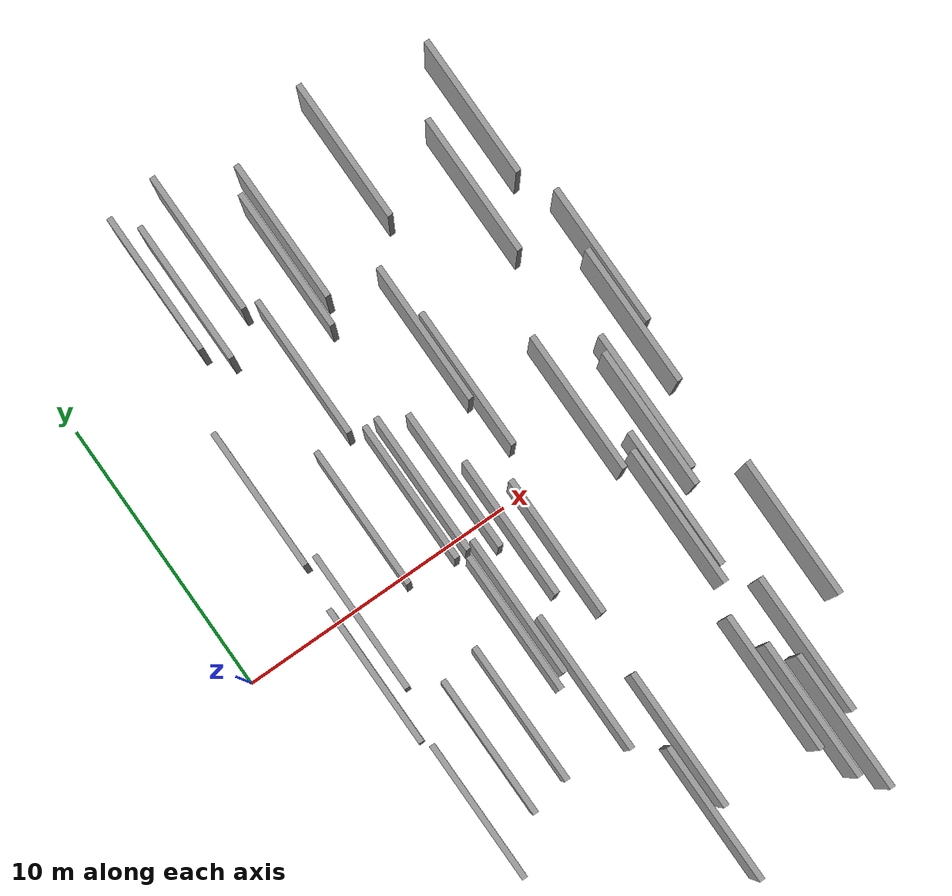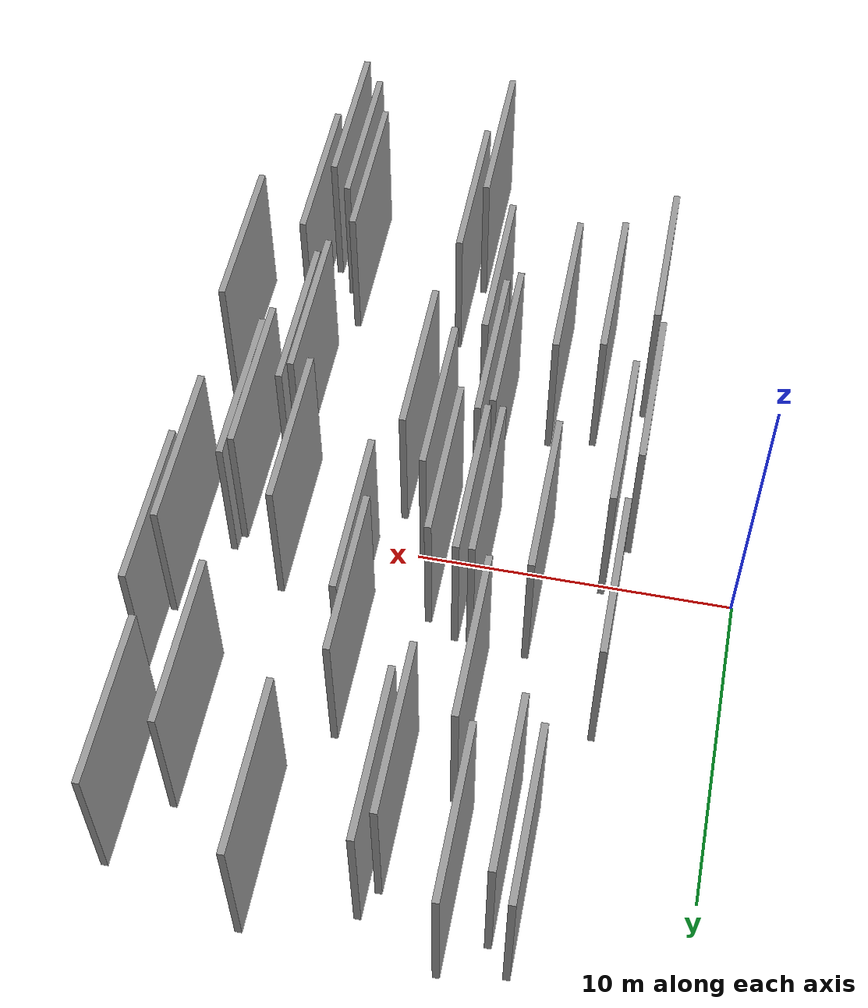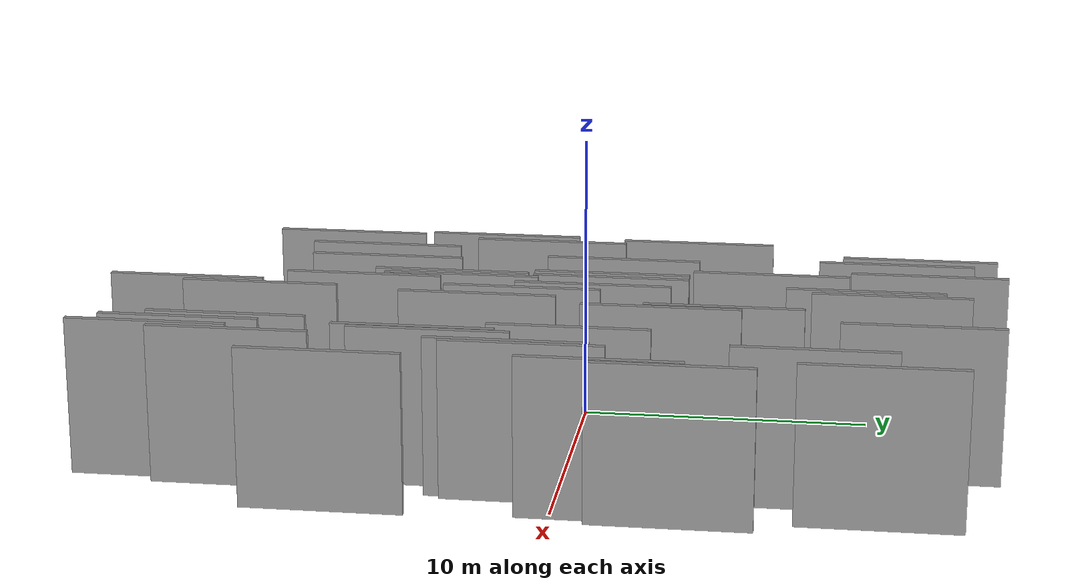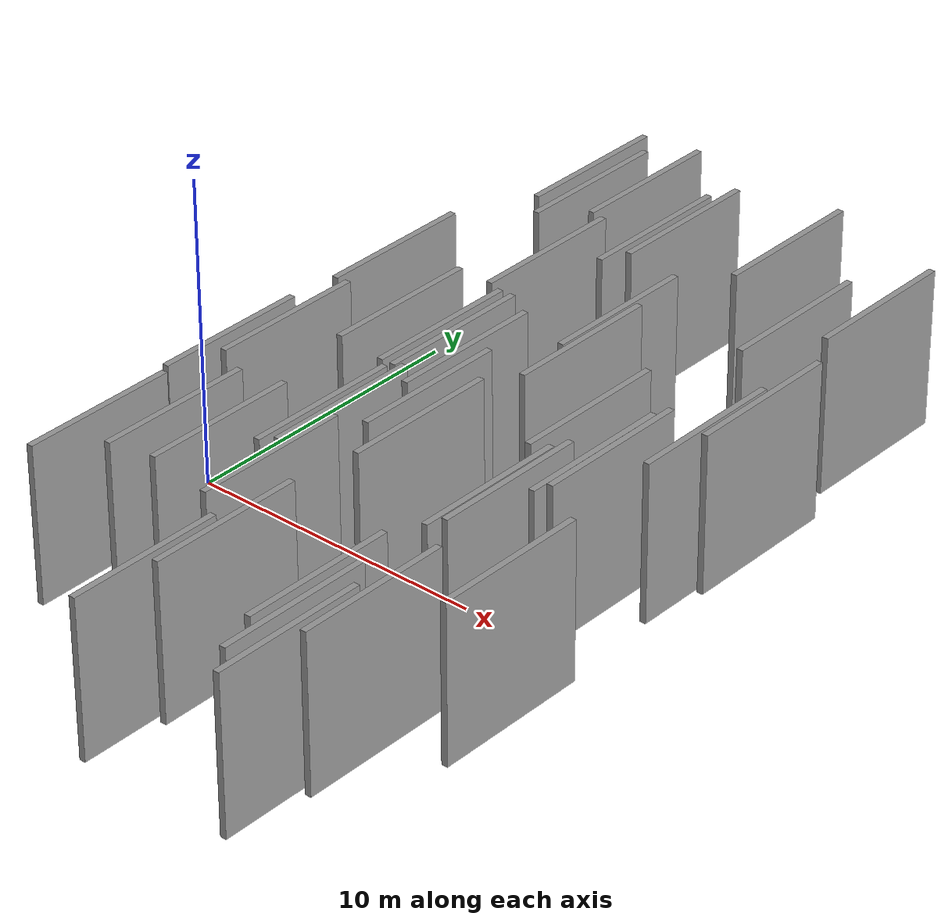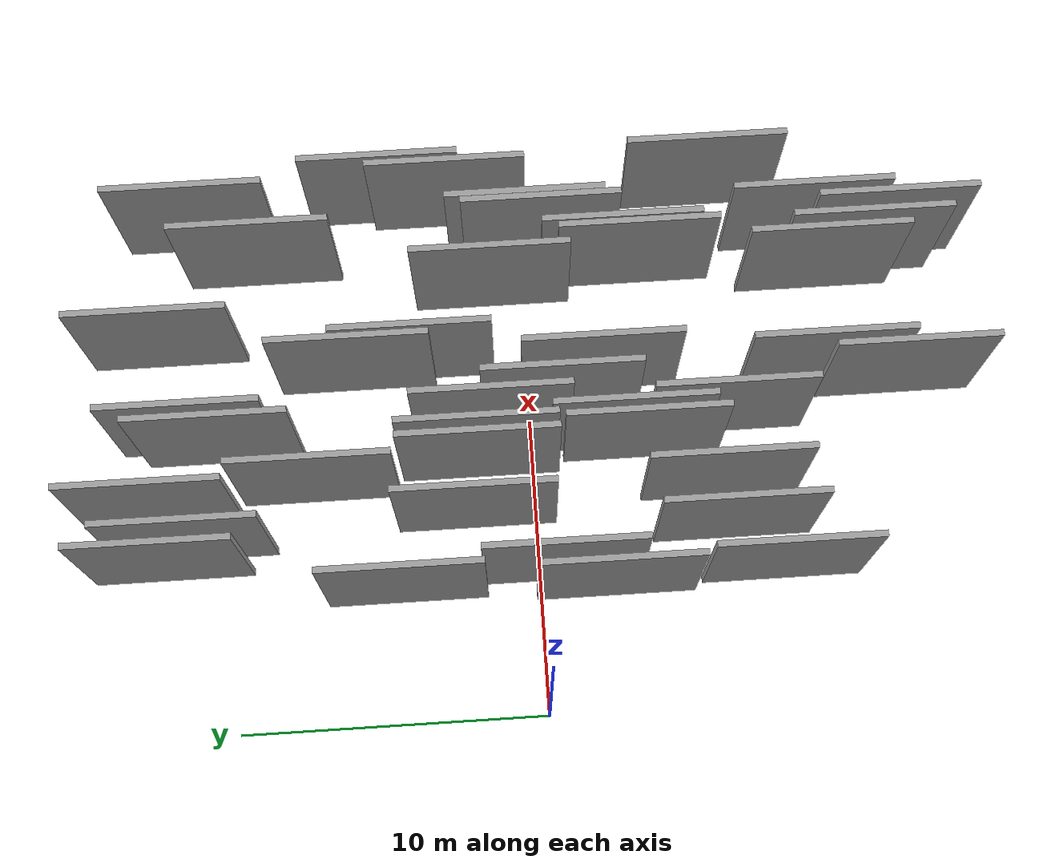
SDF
<sdf version="1.6">
 <world name="default">
  <scene>
   <sky><clouds><speed>12</speed></clouds></sky>
   <ambient>0.4 0.4 0.4 1</ambient>
   <background>0.7 0.7 0.7 1</background>
   <shadows>1</shadows>
  </scene>
  <gravity>0 0 -9.8066</gravity>
  <magnetic_field>6e-06 2.3e-05 -4.2e-05</magnetic_field>
  <physics default="0" name="default_physics" type="ode">
   <ode>
    <solver>
     <type>quick</type>
     <iters>10</iters>
     <sor>1.0</sor>
     <use_dynamic_moi_rescaling>0</use_dynamic_moi_rescaling>
    </solver>
    <constraints>
     <cfm>0</cfm>
     <erp>0.2</erp>
     <contact_max_correcting_vel>100</contact_max_correcting_vel>
     <contact_surface_layer>0.001</contact_surface_layer>
    </constraints>
   </ode>
   <max_step_size>0.004</max_step_size>
   <real_time_factor>1</real_time_factor>
   <real_time_update_rate>250</real_time_update_rate>
  </physics>
  <light name="sun" type="directional">
   <pose>0 0 10 0 0 0</pose>
   <diffuse>0.8 0.8 0.8 1</diffuse>
   <specular>0.2 0.2 0.2 1</specular>
   <attenuation>
    <range>1000</range>
    <constant>0.9</constant>
    <linear>0.01</linear>
    <quadratic>0.001</quadratic>
   </attenuation>
   <direction>-0.5 0.1 -0.9</direction>
  </light>
  <model name="grey_wall_1">
   <static>1</static>
   <pose>13.4638 1.0400 2.5 0.000000 0.000000 1.570796</pose>
   <link name="link">
    <pose>0 0 2.50 0 0 0</pose>
    <collision name="collision"><geometry><box><size>5.00 0.2 5.00</size></box></geometry></collision>
    <visual name="visual">
     <cast_shadows>0</cast_shadows>
     <geometry><box><size>5.00 0.2 5.00</size></box></geometry>
     <material>
      <script>
       <uri>model://grey_wall/materials/scripts</uri>
       <uri>model://grey_wall/materials/textures</uri>
       <name>vrc/grey_wall</name>
      </script>
     </material>
    </visual>
   </link>
  </model>
  <model name="grey_wall_2">
   <static>1</static>
   <pose>10.3620 -2.2389 2.5 0.000000 0.000000 1.570796</pose>
   <link name="link">
    <pose>0 0 2.50 0 0 0</pose>
    <collision name="collision"><geometry><box><size>5.00 0.2 5.00</size></box></geometry></collision>
    <visual name="visual">
     <cast_shadows>0</cast_shadows>
     <geometry><box><size>5.00 0.2 5.00</size></box></geometry>
     <material>
      <script>
       <uri>model://grey_wall/materials/scripts</uri>
       <uri>model://grey_wall/materials/textures</uri>
       <name>vrc/grey_wall</name>
      </script>
     </material>
    </visual>
   </link>
  </model>
  <model name="grey_wall_3">
   <static>1</static>
   <pose>10.7976 5.5351 2.5 0.000000 0.000000 1.570796</pose>
   <link name="link">
    <pose>0 0 2.50 0 0 0</pose>
    <collision name="collision"><geometry><box><size>5.00 0.2 5.00</size></box></geometry></collision>
    <visual name="visual">
     <cast_shadows>0</cast_shadows>
     <geometry><box><size>5.00 0.2 5.00</size></box></geometry>
     <material>
      <script>
       <uri>model://grey_wall/materials/scripts</uri>
       <uri>model://grey_wall/materials/textures</uri>
       <name>vrc/grey_wall</name>
      </script>
     </material>
    </visual>
   </link>
  </model>
  <model name="grey_wall_4">
   <static>1</static>
   <pose>7.1092 6.8293 2.5 0.000000 0.000000 1.570796</pose>
   <link name="link">
    <pose>0 0 2.50 0 0 0</pose>
    <collision name="collision"><geometry><box><size>5.00 0.2 5.00</size></box></geometry></collision>
    <visual name="visual">
     <cast_shadows>0</cast_shadows>
     <geometry><box><size>5.00 0.2 5.00</size></box></geometry>
     <material>
      <script>
       <uri>model://grey_wall/materials/scripts</uri>
       <uri>model://grey_wall/materials/textures</uri>
       <name>vrc/grey_wall</name>
      </script>
     </material>
    </visual>
   </link>
  </model>
  <model name="grey_wall_5">
   <static>1</static>
   <pose>4.0615 -0.6797 2.5 0.000000 0.000000 1.570796</pose>
   <link name="link">
    <pose>0 0 2.50 0 0 0</pose>
    <collision name="collision"><geometry><box><size>5.00 0.2 5.00</size></box></geometry></collision>
    <visual name="visual">
     <cast_shadows>0</cast_shadows>
     <geometry><box><size>5.00 0.2 5.00</size></box></geometry>
     <material>
      <script>
       <uri>model://grey_wall/materials/scripts</uri>
       <uri>model://grey_wall/materials/textures</uri>
       <name>vrc/grey_wall</name>
      </script>
     </material>
    </visual>
   </link>
  </model>
  <model name="grey_wall_6">
   <static>1</static>
   <pose>8.5882 9.8667 2.5 0.000000 0.000000 1.570796</pose>
   <link name="link">
    <pose>0 0 2.50 0 0 0</pose>
    <collision name="collision"><geometry><box><size>5.00 0.2 5.00</size></box></geometry></collision>
    <visual name="visual">
     <cast_shadows>0</cast_shadows>
     <geometry><box><size>5.00 0.2 5.00</size></box></geometry>
     <material>
      <script>
       <uri>model://grey_wall/materials/scripts</uri>
       <uri>model://grey_wall/materials/textures</uri>
       <name>vrc/grey_wall</name>
      </script>
     </material>
    </visual>
   </link>
  </model>
  <model name="grey_wall_7">
   <static>1</static>
   <pose>8.9923 10.6820 2.5 0.000000 0.000000 1.570796</pose>
   <link name="link">
    <pose>0 0 2.50 0 0 0</pose>
    <collision name="collision"><geometry><box><size>5.00 0.2 5.00</size></box></geometry></collision>
    <visual name="visual">
     <cast_shadows>0</cast_shadows>
     <geometry><box><size>5.00 0.2 5.00</size></box></geometry>
     <material>
      <script>
       <uri>model://grey_wall/materials/scripts</uri>
       <uri>model://grey_wall/materials/textures</uri>
       <name>vrc/grey_wall</name>
      </script>
     </material>
    </visual>
   </link>
  </model>
  <model name="grey_wall_8">
   <static>1</static>
   <pose>8.6634 -6.1801 2.5 0.000000 0.000000 1.570796</pose>
   <link name="link">
    <pose>0 0 2.50 0 0 0</pose>
    <collision name="collision"><geometry><box><size>5.00 0.2 5.00</size></box></geometry></collision>
    <visual name="visual">
     <cast_shadows>0</cast_shadows>
     <geometry><box><size>5.00 0.2 5.00</size></box></geometry>
     <material>
      <script>
       <uri>model://grey_wall/materials/scripts</uri>
       <uri>model://grey_wall/materials/textures</uri>
       <name>vrc/grey_wall</name>
      </script>
     </material>
    </visual>
   </link>
  </model>
  <model name="grey_wall_9">
   <static>1</static>
   <pose>15.2167 -0.1443 2.5 0.000000 0.000000 1.570796</pose>
   <link name="link">
    <pose>0 0 2.50 0 0 0</pose>
    <collision name="collision"><geometry><box><size>5.00 0.2 5.00</size></box></geometry></collision>
    <visual name="visual">
     <cast_shadows>0</cast_shadows>
     <geometry><box><size>5.00 0.2 5.00</size></box></geometry>
     <material>
      <script>
       <uri>model://grey_wall/materials/scripts</uri>
       <uri>model://grey_wall/materials/textures</uri>
       <name>vrc/grey_wall</name>
      </script>
     </material>
    </visual>
   </link>
  </model>
  <model name="grey_wall_10">
   <static>1</static>
   <pose>8.9300 1.2568 2.5 0.000000 0.000000 1.570796</pose>
   <link name="link">
    <pose>0 0 2.50 0 0 0</pose>
    <collision name="collision"><geometry><box><size>5.00 0.2 5.00</size></box></geometry></collision>
    <visual name="visual">
     <cast_shadows>0</cast_shadows>
     <geometry><box><size>5.00 0.2 5.00</size></box></geometry>
     <material>
      <script>
       <uri>model://grey_wall/materials/scripts</uri>
       <uri>model://grey_wall/materials/textures</uri>
       <name>vrc/grey_wall</name>
      </script>
     </material>
    </visual>
   </link>
  </model>
  <model name="grey_wall_11">
   <static>1</static>
   <pose>6.4800 -5.8282 2.5 0.000000 0.000000 1.570796</pose>
   <link name="link">
    <pose>0 0 2.50 0 0 0</pose>
    <collision name="collision"><geometry><box><size>5.00 0.2 5.00</size></box></geometry></collision>
    <visual name="visual">
     <cast_shadows>0</cast_shadows>
     <geometry><box><size>5.00 0.2 5.00</size></box></geometry>
     <material>
      <script>
       <uri>model://grey_wall/materials/scripts</uri>
       <uri>model://grey_wall/materials/textures</uri>
       <name>vrc/grey_wall</name>
      </script>
     </material>
    </visual>
   </link>
  </model>
  <model name="grey_wall_12">
   <static>1</static>
   <pose>5.9363 1.9350 2.5 0.000000 0.000000 1.570796</pose>
   <link name="link">
    <pose>0 0 2.50 0 0 0</pose>
    <collision name="collision"><geometry><box><size>5.00 0.2 5.00</size></box></geometry></collision>
    <visual name="visual">
     <cast_shadows>0</cast_shadows>
     <geometry><box><size>5.00 0.2 5.00</size></box></geometry>
     <material>
      <script>
       <uri>model://grey_wall/materials/scripts</uri>
       <uri>model://grey_wall/materials/textures</uri>
       <name>vrc/grey_wall</name>
      </script>
     </material>
    </visual>
   </link>
  </model>
  <model name="grey_wall_13">
   <static>1</static>
   <pose>14.6921 8.4638 2.5 0.000000 0.000000 1.570796</pose>
   <link name="link">
    <pose>0 0 2.50 0 0 0</pose>
    <collision name="collision"><geometry><box><size>5.00 0.2 5.00</size></box></geometry></collision>
    <visual name="visual">
     <cast_shadows>0</cast_shadows>
     <geometry><box><size>5.00 0.2 5.00</size></box></geometry>
     <material>
      <script>
       <uri>model://grey_wall/materials/scripts</uri>
       <uri>model://grey_wall/materials/textures</uri>
       <name>vrc/grey_wall</name>
      </script>
     </material>
    </visual>
   </link>
  </model>
  <model name="grey_wall_14">
   <static>1</static>
   <pose>12.0146 11.6402 2.5 0.000000 0.000000 1.570796</pose>
   <link name="link">
    <pose>0 0 2.50 0 0 0</pose>
    <collision name="collision"><geometry><box><size>5.00 0.2 5.00</size></box></geometry></collision>
    <visual name="visual">
     <cast_shadows>0</cast_shadows>
     <geometry><box><size>5.00 0.2 5.00</size></box></geometry>
     <material>
      <script>
       <uri>model://grey_wall/materials/scripts</uri>
       <uri>model://grey_wall/materials/textures</uri>
       <name>vrc/grey_wall</name>
      </script>
     </material>
    </visual>
   </link>
  </model>
  <model name="grey_wall_15">
   <static>1</static>
   <pose>16.7057 4.3830 2.5 0.000000 0.000000 1.570796</pose>
   <link name="link">
    <pose>0 0 2.50 0 0 0</pose>
    <collision name="collision"><geometry><box><size>5.00 0.2 5.00</size></box></geometry></collision>
    <visual name="visual">
     <cast_shadows>0</cast_shadows>
     <geometry><box><size>5.00 0.2 5.00</size></box></geometry>
     <material>
      <script>
       <uri>model://grey_wall/materials/scripts</uri>
       <uri>model://grey_wall/materials/textures</uri>
       <name>vrc/grey_wall</name>
      </script>
     </material>
    </visual>
   </link>
  </model>
  <model name="grey_wall_16">
   <static>1</static>
   <pose>13.9967 -3.6289 2.5 0.000000 0.000000 1.570796</pose>
   <link name="link">
    <pose>0 0 2.50 0 0 0</pose>
    <collision name="collision"><geometry><box><size>5.00 0.2 5.00</size></box></geometry></collision>
    <visual name="visual">
     <cast_shadows>0</cast_shadows>
     <geometry><box><size>5.00 0.2 5.00</size></box></geometry>
     <material>
      <script>
       <uri>model://grey_wall/materials/scripts</uri>
       <uri>model://grey_wall/materials/textures</uri>
       <name>vrc/grey_wall</name>
      </script>
     </material>
    </visual>
   </link>
  </model>
  <model name="grey_wall_17">
   <static>1</static>
   <pose>13.9272 -10.8865 2.5 0.000000 0.000000 1.570796</pose>
   <link name="link">
    <pose>0 0 2.50 0 0 0</pose>
    <collision name="collision"><geometry><box><size>5.00 0.2 5.00</size></box></geometry></collision>
    <visual name="visual">
     <cast_shadows>0</cast_shadows>
     <geometry><box><size>5.00 0.2 5.00</size></box></geometry>
     <material>
      <script>
       <uri>model://grey_wall/materials/scripts</uri>
       <uri>model://grey_wall/materials/textures</uri>
       <name>vrc/grey_wall</name>
      </script>
     </material>
    </visual>
   </link>
  </model>
  <model name="grey_wall_18">
   <static>1</static>
   <pose>7.9397 -3.4321 2.5 0.000000 0.000000 1.570796</pose>
   <link name="link">
    <pose>0 0 2.50 0 0 0</pose>
    <collision name="collision"><geometry><box><size>5.00 0.2 5.00</size></box></geometry></collision>
    <visual name="visual">
     <cast_shadows>0</cast_shadows>
     <geometry><box><size>5.00 0.2 5.00</size></box></geometry>
     <material>
      <script>
       <uri>model://grey_wall/materials/scripts</uri>
       <uri>model://grey_wall/materials/textures</uri>
       <name>vrc/grey_wall</name>
      </script>
     </material>
    </visual>
   </link>
  </model>
  <model name="grey_wall_19">
   <static>1</static>
   <pose>4.8163 11.5739 2.5 0.000000 0.000000 1.570796</pose>
   <link name="link">
    <pose>0 0 2.50 0 0 0</pose>
    <collision name="collision"><geometry><box><size>5.00 0.2 5.00</size></box></geometry></collision>
    <visual name="visual">
     <cast_shadows>0</cast_shadows>
     <geometry><box><size>5.00 0.2 5.00</size></box></geometry>
     <material>
      <script>
       <uri>model://grey_wall/materials/scripts</uri>
       <uri>model://grey_wall/materials/textures</uri>
       <name>vrc/grey_wall</name>
      </script>
     </material>
    </visual>
   </link>
  </model>
  <model name="grey_wall_20">
   <static>1</static>
   <pose>11.0679 3.6112 2.5 0.000000 0.000000 1.570796</pose>
   <link name="link">
    <pose>0 0 2.50 0 0 0</pose>
    <collision name="collision"><geometry><box><size>5.00 0.2 5.00</size></box></geometry></collision>
    <visual name="visual">
     <cast_shadows>0</cast_shadows>
     <geometry><box><size>5.00 0.2 5.00</size></box></geometry>
     <material>
      <script>
       <uri>model://grey_wall/materials/scripts</uri>
       <uri>model://grey_wall/materials/textures</uri>
       <name>vrc/grey_wall</name>
      </script>
     </material>
    </visual>
   </link>
  </model>
  <model name="grey_wall_21">
   <static>1</static>
   <pose>3.4622 -2.3037 2.5 0.000000 0.000000 1.570796</pose>
   <link name="link">
    <pose>0 0 2.50 0 0 0</pose>
    <collision name="collision"><geometry><box><size>5.00 0.2 5.00</size></box></geometry></collision>
    <visual name="visual">
     <cast_shadows>0</cast_shadows>
     <geometry><box><size>5.00 0.2 5.00</size></box></geometry>
     <material>
      <script>
       <uri>model://grey_wall/materials/scripts</uri>
       <uri>model://grey_wall/materials/textures</uri>
       <name>vrc/grey_wall</name>
      </script>
     </material>
    </visual>
   </link>
  </model>
  <model name="grey_wall_22">
   <static>1</static>
   <pose>16.4252 2.2925 2.5 0.000000 0.000000 1.570796</pose>
   <link name="link">
    <pose>0 0 2.50 0 0 0</pose>
    <collision name="collision"><geometry><box><size>5.00 0.2 5.00</size></box></geometry></collision>
    <visual name="visual">
     <cast_shadows>0</cast_shadows>
     <geometry><box><size>5.00 0.2 5.00</size></box></geometry>
     <material>
      <script>
       <uri>model://grey_wall/materials/scripts</uri>
       <uri>model://grey_wall/materials/textures</uri>
       <name>vrc/grey_wall</name>
      </script>
     </material>
    </visual>
   </link>
  </model>
  <model name="grey_wall_23">
   <static>1</static>
   <pose>16.0631 10.4890 2.5 0.000000 0.000000 1.570796</pose>
   <link name="link">
    <pose>0 0 2.50 0 0 0</pose>
    <collision name="collision"><geometry><box><size>5.00 0.2 5.00</size></box></geometry></collision>
    <visual name="visual">
     <cast_shadows>0</cast_shadows>
     <geometry><box><size>5.00 0.2 5.00</size></box></geometry>
     <material>
      <script>
       <uri>model://grey_wall/materials/scripts</uri>
       <uri>model://grey_wall/materials/textures</uri>
       <name>vrc/grey_wall</name>
      </script>
     </material>
    </visual>
   </link>
  </model>
  <model name="grey_wall_24">
   <static>1</static>
   <pose>14.5401 -11.7421 2.5 0.000000 0.000000 1.570796</pose>
   <link name="link">
    <pose>0 0 2.50 0 0 0</pose>
    <collision name="collision"><geometry><box><size>5.00 0.2 5.00</size></box></geometry></collision>
    <visual name="visual">
     <cast_shadows>0</cast_shadows>
     <geometry><box><size>5.00 0.2 5.00</size></box></geometry>
     <material>
      <script>
       <uri>model://grey_wall/materials/scripts</uri>
       <uri>model://grey_wall/materials/textures</uri>
       <name>vrc/grey_wall</name>
      </script>
     </material>
    </visual>
   </link>
  </model>
  <model name="grey_wall_25">
   <static>1</static>
   <pose>13.4513 -9.5272 2.5 0.000000 0.000000 1.570796</pose>
   <link name="link">
    <pose>0 0 2.50 0 0 0</pose>
    <collision name="collision"><geometry><box><size>5.00 0.2 5.00</size></box></geometry></collision>
    <visual name="visual">
     <cast_shadows>0</cast_shadows>
     <geometry><box><size>5.00 0.2 5.00</size></box></geometry>
     <material>
      <script>
       <uri>model://grey_wall/materials/scripts</uri>
       <uri>model://grey_wall/materials/textures</uri>
       <name>vrc/grey_wall</name>
      </script>
     </material>
    </visual>
   </link>
  </model>
  <model name="grey_wall_26">
   <static>1</static>
   <pose>3.6778 -7.5434 2.5 0.000000 0.000000 1.570796</pose>
   <link name="link">
    <pose>0 0 2.50 0 0 0</pose>
    <collision name="collision"><geometry><box><size>5.00 0.2 5.00</size></box></geometry></collision>
    <visual name="visual">
     <cast_shadows>0</cast_shadows>
     <geometry><box><size>5.00 0.2 5.00</size></box></geometry>
     <material>
      <script>
       <uri>model://grey_wall/materials/scripts</uri>
       <uri>model://grey_wall/materials/textures</uri>
       <name>vrc/grey_wall</name>
      </script>
     </material>
    </visual>
   </link>
  </model>
  <model name="grey_wall_27">
   <static>1</static>
   <pose>9.6198 -11.7687 2.5 0.000000 0.000000 1.570796</pose>
   <link name="link">
    <pose>0 0 2.50 0 0 0</pose>
    <collision name="collision"><geometry><box><size>5.00 0.2 5.00</size></box></geometry></collision>
    <visual name="visual">
     <cast_shadows>0</cast_shadows>
     <geometry><box><size>5.00 0.2 5.00</size></box></geometry>
     <material>
      <script>
       <uri>model://grey_wall/materials/scripts</uri>
       <uri>model://grey_wall/materials/textures</uri>
       <name>vrc/grey_wall</name>
      </script>
     </material>
    </visual>
   </link>
  </model>
  <model name="grey_wall_28">
   <static>1</static>
   <pose>15.0145 -0.6363 2.5 0.000000 0.000000 1.570796</pose>
   <link name="link">
    <pose>0 0 2.50 0 0 0</pose>
    <collision name="collision"><geometry><box><size>5.00 0.2 5.00</size></box></geometry></collision>
    <visual name="visual">
     <cast_shadows>0</cast_shadows>
     <geometry><box><size>5.00 0.2 5.00</size></box></geometry>
     <material>
      <script>
       <uri>model://grey_wall/materials/scripts</uri>
       <uri>model://grey_wall/materials/textures</uri>
       <name>vrc/grey_wall</name>
      </script>
     </material>
    </visual>
   </link>
  </model>
  <model name="grey_wall_29">
   <static>1</static>
   <pose>5.0991 -6.1091 2.5 0.000000 0.000000 1.570796</pose>
   <link name="link">
    <pose>0 0 2.50 0 0 0</pose>
    <collision name="collision"><geometry><box><size>5.00 0.2 5.00</size></box></geometry></collision>
    <visual name="visual">
     <cast_shadows>0</cast_shadows>
     <geometry><box><size>5.00 0.2 5.00</size></box></geometry>
     <material>
      <script>
       <uri>model://grey_wall/materials/scripts</uri>
       <uri>model://grey_wall/materials/textures</uri>
       <name>vrc/grey_wall</name>
      </script>
     </material>
    </visual>
   </link>
  </model>
  <model name="grey_wall_30">
   <static>1</static>
   <pose>9.5168 -0.9366 2.5 0.000000 0.000000 1.570796</pose>
   <link name="link">
    <pose>0 0 2.50 0 0 0</pose>
    <collision name="collision"><geometry><box><size>5.00 0.2 5.00</size></box></geometry></collision>
    <visual name="visual">
     <cast_shadows>0</cast_shadows>
     <geometry><box><size>5.00 0.2 5.00</size></box></geometry>
     <material>
      <script>
       <uri>model://grey_wall/materials/scripts</uri>
       <uri>model://grey_wall/materials/textures</uri>
       <name>vrc/grey_wall</name>
      </script>
     </material>
    </visual>
   </link>
  </model>
  <model name="grey_wall_31">
   <static>1</static>
   <pose>7.6117 1.7303 2.5 0.000000 0.000000 1.570796</pose>
   <link name="link">
    <pose>0 0 2.50 0 0 0</pose>
    <collision name="collision"><geometry><box><size>5.00 0.2 5.00</size></box></geometry></collision>
    <visual name="visual">
     <cast_shadows>0</cast_shadows>
     <geometry><box><size>5.00 0.2 5.00</size></box></geometry>
     <material>
      <script>
       <uri>model://grey_wall/materials/scripts</uri>
       <uri>model://grey_wall/materials/textures</uri>
       <name>vrc/grey_wall</name>
      </script>
     </material>
    </visual>
   </link>
  </model>
  <model name="grey_wall_32">
   <static>1</static>
   <pose>8.0539 1.7455 2.5 0.000000 0.000000 1.570796</pose>
   <link name="link">
    <pose>0 0 2.50 0 0 0</pose>
    <collision name="collision"><geometry><box><size>5.00 0.2 5.00</size></box></geometry></collision>
    <visual name="visual">
     <cast_shadows>0</cast_shadows>
     <geometry><box><size>5.00 0.2 5.00</size></box></geometry>
     <material>
      <script>
       <uri>model://grey_wall/materials/scripts</uri>
       <uri>model://grey_wall/materials/textures</uri>
       <name>vrc/grey_wall</name>
      </script>
     </material>
    </visual>
   </link>
  </model>
  <model name="grey_wall_33">
   <static>1</static>
   <pose>8.3247 -3.0700 2.5 0.000000 0.000000 1.570796</pose>
   <link name="link">
    <pose>0 0 2.50 0 0 0</pose>
    <collision name="collision"><geometry><box><size>5.00 0.2 5.00</size></box></geometry></collision>
    <visual name="visual">
     <cast_shadows>0</cast_shadows>
     <geometry><box><size>5.00 0.2 5.00</size></box></geometry>
     <material>
      <script>
       <uri>model://grey_wall/materials/scripts</uri>
       <uri>model://grey_wall/materials/textures</uri>
       <name>vrc/grey_wall</name>
      </script>
     </material>
    </visual>
   </link>
  </model>
  <model name="grey_wall_34">
   <static>1</static>
   <pose>14.9402 -9.1194 2.5 0.000000 0.000000 1.570796</pose>
   <link name="link">
    <pose>0 0 2.50 0 0 0</pose>
    <collision name="collision"><geometry><box><size>5.00 0.2 5.00</size></box></geometry></collision>
    <visual name="visual">
     <cast_shadows>0</cast_shadows>
     <geometry><box><size>5.00 0.2 5.00</size></box></geometry>
     <material>
      <script>
       <uri>model://grey_wall/materials/scripts</uri>
       <uri>model://grey_wall/materials/textures</uri>
       <name>vrc/grey_wall</name>
      </script>
     </material>
    </visual>
   </link>
  </model>
  <model name="grey_wall_35">
   <static>1</static>
   <pose>5.4408 10.8151 2.5 0.000000 0.000000 1.570796</pose>
   <link name="link">
    <pose>0 0 2.50 0 0 0</pose>
    <collision name="collision"><geometry><box><size>5.00 0.2 5.00</size></box></geometry></collision>
    <visual name="visual">
     <cast_shadows>0</cast_shadows>
     <geometry><box><size>5.00 0.2 5.00</size></box></geometry>
     <material>
      <script>
       <uri>model://grey_wall/materials/scripts</uri>
       <uri>model://grey_wall/materials/textures</uri>
       <name>vrc/grey_wall</name>
      </script>
     </material>
    </visual>
   </link>
  </model>
  <model name="grey_wall_36">
   <static>1</static>
   <pose>16.6850 -5.9519 2.5 0.000000 0.000000 1.570796</pose>
   <link name="link">
    <pose>0 0 2.50 0 0 0</pose>
    <collision name="collision"><geometry><box><size>5.00 0.2 5.00</size></box></geometry></collision>
    <visual name="visual">
     <cast_shadows>0</cast_shadows>
     <geometry><box><size>5.00 0.2 5.00</size></box></geometry>
     <material>
      <script>
       <uri>model://grey_wall/materials/scripts</uri>
       <uri>model://grey_wall/materials/textures</uri>
       <name>vrc/grey_wall</name>
      </script>
     </material>
    </visual>
   </link>
  </model>
  <model name="grey_wall_37">
   <static>1</static>
   <pose>14.2294 -3.1209 2.5 0.000000 0.000000 1.570796</pose>
   <link name="link">
    <pose>0 0 2.50 0 0 0</pose>
    <collision name="collision"><geometry><box><size>5.00 0.2 5.00</size></box></geometry></collision>
    <visual name="visual">
     <cast_shadows>0</cast_shadows>
     <geometry><box><size>5.00 0.2 5.00</size></box></geometry>
     <material>
      <script>
       <uri>model://grey_wall/materials/scripts</uri>
       <uri>model://grey_wall/materials/textures</uri>
       <name>vrc/grey_wall</name>
      </script>
     </material>
    </visual>
   </link>
  </model>
  <model name="grey_wall_38">
   <static>1</static>
   <pose>6.6326 11.8655 2.5 0.000000 0.000000 1.570796</pose>
   <link name="link">
    <pose>0 0 2.50 0 0 0</pose>
    <collision name="collision"><geometry><box><size>5.00 0.2 5.00</size></box></geometry></collision>
    <visual name="visual">
     <cast_shadows>0</cast_shadows>
     <geometry><box><size>5.00 0.2 5.00</size></box></geometry>
     <material>
      <script>
       <uri>model://grey_wall/materials/scripts</uri>
       <uri>model://grey_wall/materials/textures</uri>
       <name>vrc/grey_wall</name>
      </script>
     </material>
    </visual>
   </link>
  </model>
  <model name="grey_wall_39">
   <static>1</static>
   <pose>3.6477 4.2320 2.5 0.000000 0.000000 1.570796</pose>
   <link name="link">
    <pose>0 0 2.50 0 0 0</pose>
    <collision name="collision"><geometry><box><size>5.00 0.2 5.00</size></box></geometry></collision>
    <visual name="visual">
     <cast_shadows>0</cast_shadows>
     <geometry><box><size>5.00 0.2 5.00</size></box></geometry>
     <material>
      <script>
       <uri>model://grey_wall/materials/scripts</uri>
       <uri>model://grey_wall/materials/textures</uri>
       <name>vrc/grey_wall</name>
      </script>
     </material>
    </visual>
   </link>
  </model>
  <model name="grey_wall_40">
   <static>1</static>
   <pose>10.0236 -9.2811 2.5 0.000000 0.000000 1.570796</pose>
   <link name="link">
    <pose>0 0 2.50 0 0 0</pose>
    <collision name="collision"><geometry><box><size>5.00 0.2 5.00</size></box></geometry></collision>
    <visual name="visual">
     <cast_shadows>0</cast_shadows>
     <geometry><box><size>5.00 0.2 5.00</size></box></geometry>
     <material>
      <script>
       <uri>model://grey_wall/materials/scripts</uri>
       <uri>model://grey_wall/materials/textures</uri>
       <name>vrc/grey_wall</name>
      </script>
     </material>
    </visual>
   </link>
  </model>
 </world>
</sdf>
